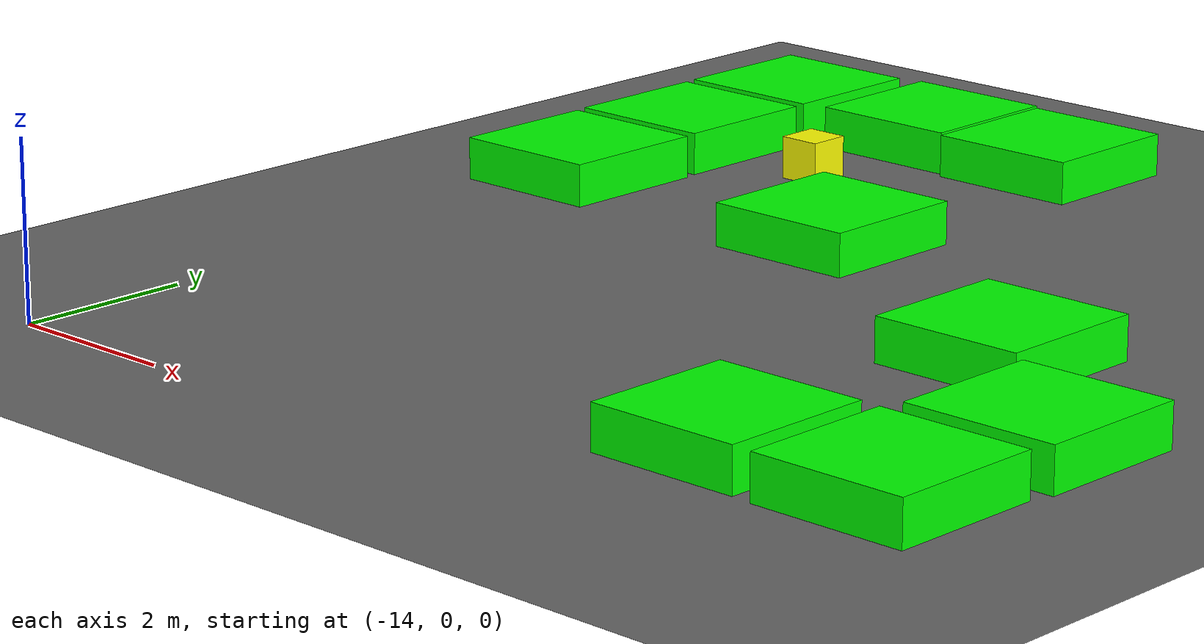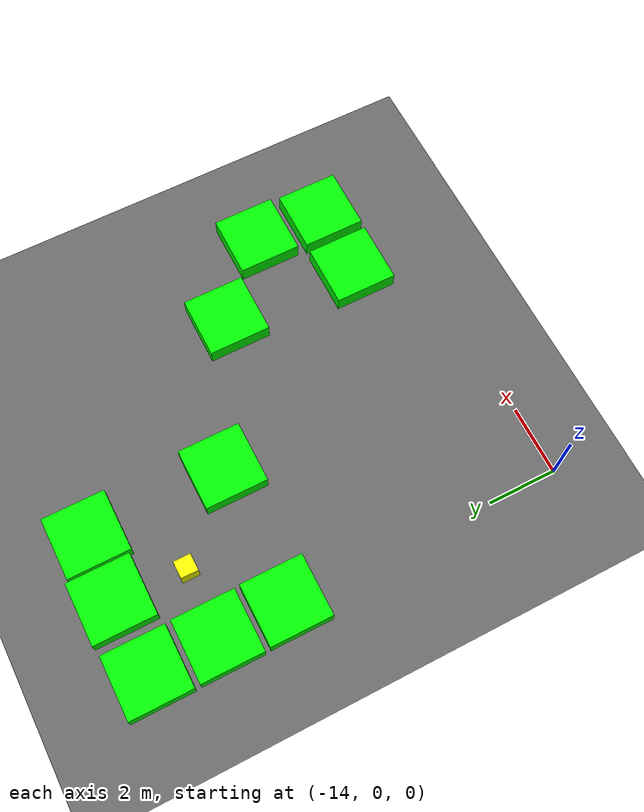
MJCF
<mujoco model="lvl5_corridor_obs10_dlong_depth3_seed51">
    <compiler angle="degree" coordinate="local" inertiafromgeom="true"/>
    <option integrator="RK4" timestep="0.01"/>

    <asset>
        <texture builtin="gradient" height="100" rgb1="0.6 0.8 1" rgb2="0 0 0" type="skybox" width="100"/>
        <texture name="floor_texture" type="2d" builtin="checker" width="100" height="100" rgb1="0 0 0" rgb2="0.8 0.8 0.8"/>
        <material name="MatPlane" reflectance="0.5" shininess="1" specular="1" texrepeat="10 10" texture="floor_texture"/>
    </asset>

    <!-- Excluding the contact between the agent and the goal, and the agent and the floor -->
    <contact>
        <exclude body1="agent" body2="goal"/>
        <exclude body1 = "agent" body2 = "floor"/>
    </contact>

    <extension>
        <plugin plugin = "mujoco.pid">
            <instance name = "pid1">
                <config key="kp" value="2"/>
                <config key="ki" value="0"/>
                <config key="kd" value="55"/>
            </instance>
        </plugin>
    </extension>

    <worldbody>
        <light cutoff="100" diffuse="1 1 1" dir="-0 0 -1.3" directional="true" exponent="1" pos="0 0 1.3" specular=".1 .1 .1"/>
        <body name="floor" pos="0 0 0">
            <geom name="floor_geom" type="plane" size="20 20 0.1" material="MatPlane"/>
        </body>

                <body name="goal" pos="0.0000 0.0000 0">
            <geom name="goal_geom" type="plane" size="0.5 0.5 1" pos="0 0 0" rgba="1 0 0 1"/>
        </body>

                <body name="agent" pos="-12.0000 10.0000 0.250">
            <joint name="j1" type="slide" axis ="1 0 0 "/>
            <joint name="j2" type="slide" axis ="0 1 0 "/>
            <geom name="agent_geom" type="box" size="0.25 0.25 0.250" rgba="1 1 0 1"/>
        </body>

        <body name="obstacle1" pos="-14.0098 11.9833 0.250">  <geom name="obstacle1_geom" type="box" size="0.9000 0.9000 0.250" rgba="0 1 0 1"/></body>
        <body name="obstacle2" pos="-11.9172 12.0497 0.250">  <geom name="obstacle2_geom" type="box" size="0.9000 0.9000 0.250" rgba="0 1 0 1"/></body>
        <body name="obstacle3" pos="-10.0497 11.9645 0.250">  <geom name="obstacle3_geom" type="box" size="0.9000 0.9000 0.250" rgba="0 1 0 1"/></body>
        <body name="obstacle4" pos="-13.9888 10.0326 0.250">  <geom name="obstacle4_geom" type="box" size="0.9000 0.9000 0.250" rgba="0 1 0 1"/></body>
        <body name="obstacle5" pos="-13.9618 8.0844 0.250">  <geom name="obstacle5_geom" type="box" size="0.9000 0.9000 0.250" rgba="0 1 0 1"/></body>
        <body name="obstacle6" pos="-9.9545 7.9758 0.250">  <geom name="obstacle6_geom" type="box" size="0.9000 0.9000 0.250" rgba="0 1 0 1"/></body>
        <body name="obstacle7" pos="-5.9279 5.9430 0.250">  <geom name="obstacle7_geom" type="box" size="0.9000 0.9000 0.250" rgba="0 1 0 1"/></body>
        <body name="obstacle8" pos="-3.9490 4.0233 0.250">  <geom name="obstacle8_geom" type="box" size="0.9000 0.9000 0.250" rgba="0 1 0 1"/></body>
        <body name="obstacle9" pos="-6.0659 2.0024 0.250">  <geom name="obstacle9_geom" type="box" size="0.9000 0.9000 0.250" rgba="0 1 0 1"/></body>
        <body name="obstacle10" pos="-4.0282 1.9793 0.250">  <geom name="obstacle10_geom" type="box" size="0.9000 0.9000 0.250" rgba="0 1 0 1"/></body>

    </worldbody>

    <sensor>
<!-- SENSORS -->

        <distance name="dist1" geom1="agent_geom" geom2="obstacle1_geom" cutoff="1.5"/>
        <distance name="dist2" geom1="agent_geom" geom2="obstacle2_geom" cutoff="1.5"/>
        <distance name="dist3" geom1="agent_geom" geom2="obstacle3_geom" cutoff="1.5"/>
        <distance name="dist4" geom1="agent_geom" geom2="obstacle4_geom" cutoff="1.5"/>
        <distance name="dist5" geom1="agent_geom" geom2="obstacle5_geom" cutoff="1.5"/>
        <distance name="dist6" geom1="agent_geom" geom2="obstacle6_geom" cutoff="1.5"/>
        <distance name="dist7" geom1="agent_geom" geom2="obstacle7_geom" cutoff="1.5"/>
        <distance name="dist8" geom1="agent_geom" geom2="obstacle8_geom" cutoff="1.5"/>
        <distance name="dist9" geom1="agent_geom" geom2="obstacle9_geom" cutoff="1.5"/>
        <distance name="dist10" geom1="agent_geom" geom2="obstacle10_geom" cutoff="1.5"/>
</sensor>

    <actuator>
        <plugin joint="j1" plugin="mujoco.pid" instance="pid1" />
        <plugin joint="j2" plugin="mujoco.pid" instance="pid1"/>
    </actuator>
</mujoco>
